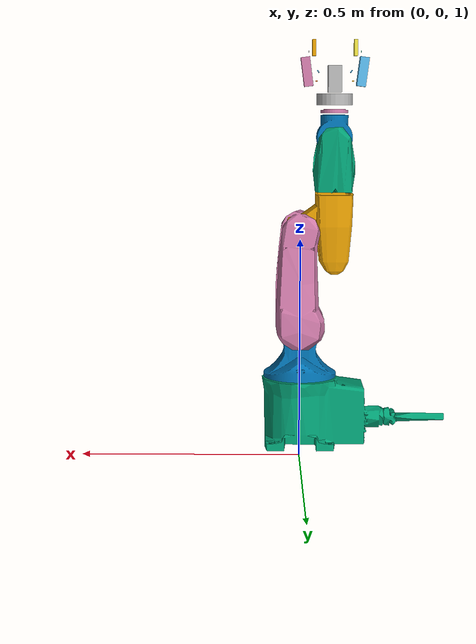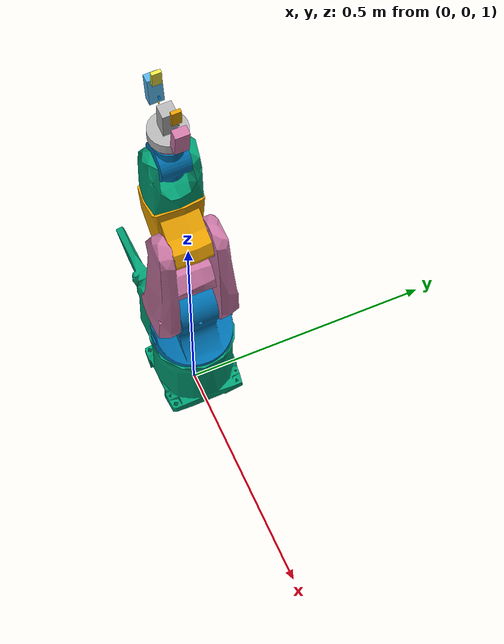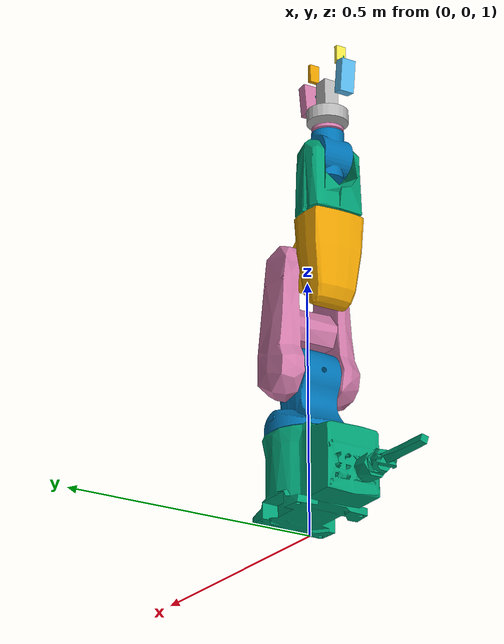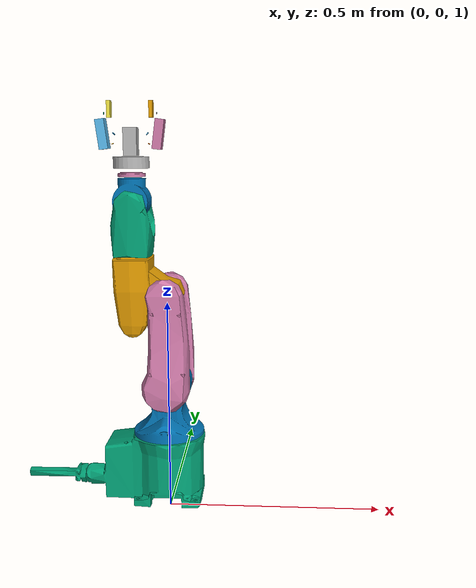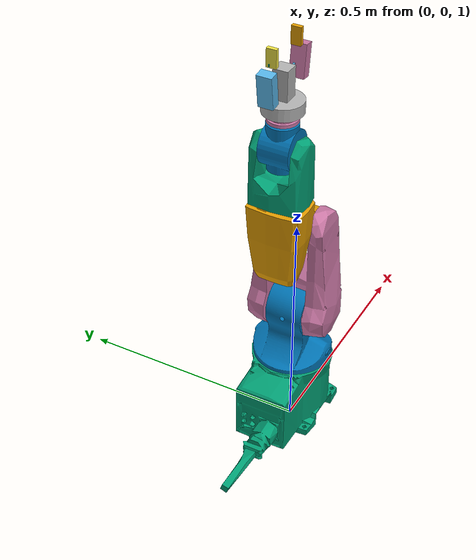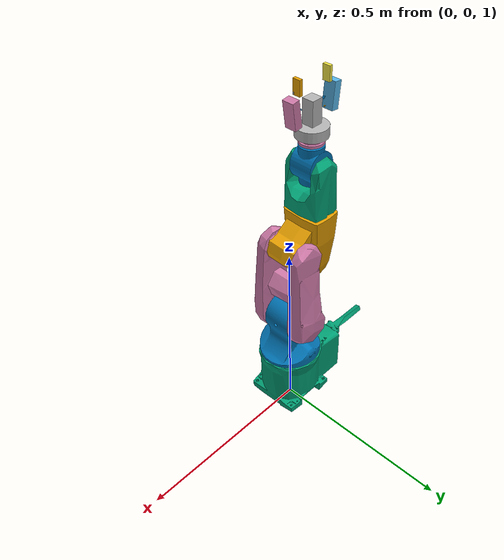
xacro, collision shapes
<?xml version="1.0"?>
<robot xmlns:xacro="http://ros.org/wiki/xacro" name="vp6242_robotiq85">

	<!-- THE ROBOT -->
	<link name="world" />

	<!-- Arm file -->
	<xacro:include filename="$(find vp6242b_description)/urdf/vp6242.urdf.xacro" />
	<joint name="world_joint" type="fixed">
		<parent link="world" />
		<child link = "base_org" />
		<origin xyz="0.0 0.0 1.03" rpy="0.0 0.0 0.0" />
	</joint>

	<!-- Robotiq from Beta Robots fork-->
	<xacro:include filename="$(find robotiq_2f_model)/model/robotiq_2f_85.urdf.xacro" />
	<xacro:robotiq_2f_85 name="simple_gripper" parent="link_6" precise_collision="false" adaptive_transmission="false">
		<origin xyz="0 0 0" rpy="0 0 1.5708" />
	</xacro:robotiq_2f_85>

	<!-- ====== Gazebo Plugins ======= -->
	<gazebo>
		<plugin name="control" filename="libgazebo_ros_control.so" />
	</gazebo>
</robot>

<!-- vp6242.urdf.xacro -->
<robot xmlns:xacro="http://ros.org/wiki/xacro" name="vp6242b">
  <!-- General properties -->
  <xacro:property name="deg2rad" value="${pi/180}"/>
  <xacro:property name="rad2deg" value="${180/pi}"/>
  <xacro:property name="mesh_path" value="package://vp6242b_description/meshes" />

  <!-- Joint properties -->
  <xacro:property name="default_joint_velocity" value="0.8" />
  <xacro:property name="default_joint_effort" value="10e3" />
  <xacro:property name="default_joint_damping" value="0.5" />
  <xacro:property name="default_joint_friction" value="0.06" />

  <xacro:property name="joint_1_min" value="${-90.0*deg2rad}" />
  <xacro:property name="joint_1_max" value="${90.0*deg2rad}" />
  <xacro:property name="joint_2_min" value="${-120.0*deg2rad}" />
  <xacro:property name="joint_2_max" value="${120.0*deg2rad}" />
  <xacro:property name="joint_3_min" value="${-160.0*deg2rad}" />
  <xacro:property name="joint_3_max" value="${1*deg2rad}" />
  <xacro:property name="joint_4_min" value="${-89.0*deg2rad}" />
  <xacro:property name="joint_4_max" value="${89.0*deg2rad}" />
  <xacro:property name="joint_5_min" value="${-120.0*deg2rad}" />
  <xacro:property name="joint_5_max" value="${120.0*deg2rad}" />
  <xacro:property name="joint_6_min" value="${-160.0*deg2rad}" />
  <xacro:property name="joint_6_max" value="${160.0*deg2rad}" />

  <!-- Some Userful Interial Macros -->
  <!-- Ref: https://github.com/uos/uos_tools/blob/fuerte/uos_common_urdf/common.xacro -->
  <xacro:macro name="box_inertial_with_origin" params="x y z mass *origin">
    <inertial>
      <mass value="${mass}" />
      <insert_block name="origin"/>
      <inertia ixx="${0.0833333 * mass * (y*y + z*z)}" ixy="0.0" ixz="0.0"
        iyy="${0.0833333 * mass * (x*x + z*z)}" iyz="0.0"
        izz="${0.0833333 * mass * (x*x + y*y)}" />
    </inertial>
  </xacro:macro>
  <xacro:macro name="sphere_inertial_with_origin" params="radius mass *origin">
    <inertial>
      <mass value="${mass}" />
      <insert_block name="origin" />
      <inertia ixx="${0.4 * mass * radius * radius}" ixy="0.0" ixz="0.0"
        iyy="${0.4 * mass * radius * radius}" iyz="0.0"
        izz="${0.4 * mass * radius * radius}" />
    </inertial>
  </xacro:macro>
  <xacro:macro name="cylinder_inertial_with_origin" params="radius length mass *origin">
    <inertial>
      <mass value="${mass}" />
      <insert_block name="origin" />
      <inertia ixx="${0.0833333 * mass * (3 * radius * radius + length * length)}" ixy="0.0" ixz="0.0"
        iyy="${0.0833333 * mass * (3 * radius * radius + length * length)}" iyz="0.0"
        izz="${0.5 * mass * radius * radius}" />
    </inertial>
  </xacro:macro>

  <!-- ========== Links =========== -->
  <link name="base_org"/>
  <link name="base_link">
    <visual>
       <geometry>
          <mesh filename="${mesh_path}/visual/base.dae"/>
       </geometry>
    </visual>
    <collision>
       <geometry>
          <mesh filename="${mesh_path}/collision/base.dae"/>
       </geometry>
    </collision>
    <xacro:box_inertial_with_origin x="0.2" y="0.155" z="0.155" mass="5">
      <origin xyz="-0.034692 -0.000668 -0.075958"/>
    </xacro:box_inertial_with_origin>
  </link>
  <link name="base_link_aux"/>
  <link name="link_1">
    <visual>
      <geometry>
         <mesh filename="${mesh_path}/visual/link1.dae"/>
      </geometry>
    </visual>
    <collision>
      <geometry>
        <mesh filename="${mesh_path}/collision/link1.dae"/>
      </geometry>
    </collision>
    <xacro:cylinder_inertial_with_origin radius="0.08" length="0.1" mass="4">
      <origin xyz="-0.000004 -0.059714 -0.000001"/>
    </xacro:cylinder_inertial_with_origin>
  </link>
  <link name="link_1_aux"/>
  <link name="link_2">
    <visual>
      <geometry>
         <mesh filename="${mesh_path}/visual/link2.dae"/>
      </geometry>
    </visual>
    <collision>
       <geometry>
          <mesh filename="${mesh_path}/collision/link2.dae"/>
       </geometry>
    </collision>
    <xacro:box_inertial_with_origin x="0.180" y="0.08" z="0.08" mass="2">
      <origin xyz="-0.133202 -0.003108 -0.000139"/>
    </xacro:box_inertial_with_origin>
  </link>
  <link name="link_2_aux"/>
  <link name="link_3">
    <visual>
      <geometry>
          <mesh filename="${mesh_path}/visual/link3.dae"/>
      </geometry>
    </visual>
    <collision>
        <geometry>
          <mesh filename="${mesh_path}/collision/link3.dae"/>
        </geometry>
    </collision>
    <xacro:box_inertial_with_origin x="0.06" y="0.06" z="0.180" mass="2">
      <origin xyz="0 0 0"/>
    </xacro:box_inertial_with_origin>
  </link>
  <link name="link_3_aux"/>
  <link name="link_4">
    <visual>
      <geometry>
          <mesh filename="${mesh_path}/visual/link4.dae"/>
      </geometry>
    </visual>
    <collision>
        <geometry>
          <mesh filename="${mesh_path}/collision/link4.dae"/>
        </geometry>
    </collision>
    <xacro:box_inertial_with_origin x="0.06" y="0.210" z="0.06" mass="2">
      <origin xyz="0 0 0"/>
    </xacro:box_inertial_with_origin>
  </link>
  <link name="link_4_aux"/>
  <link name="link_5">
    <visual>
      <geometry>
         <mesh filename="${mesh_path}/visual/link5.dae"/>
      </geometry>
    </visual>
    <collision>
       <geometry>
          <mesh filename="${mesh_path}/collision/link5.dae"/>
       </geometry>
    </collision>
    <xacro:sphere_inertial_with_origin radius="0.03" mass="0.5">
      <origin xyz="0 0 0"/>
    </xacro:sphere_inertial_with_origin>
  </link>
  <link name="link_5_aux"/>
  <link name="link_6">
    <visual>
      <geometry>
         <mesh filename="${mesh_path}/visual/wrist.dae"/>
      </geometry>
    </visual>
    <collision>
       <geometry>
          <mesh filename="${mesh_path}/collision/wrist.dae"/>
       </geometry>
    </collision>
    <xacro:cylinder_inertial_with_origin radius="0.04" length="0.08" mass="1.0">
      <origin xyz="0 0 0"/>
    </xacro:cylinder_inertial_with_origin>
  </link>

  <!-- ========== Joints =========== -->
  <joint name="base_org_to_base" type="fixed">
    <parent link="base_org"/>
    <child link="base_link"/>
    <origin xyz="0 0 0.155" rpy="0 0 0"/>
  </joint>
  <joint name="joint_1" type="revolute">
    <parent link="base_link"/>
    <child link="base_link_aux"/>
    <axis xyz="0 0 1"/>
    <origin xyz="0 0 0" rpy="0 0 0"/>
    <dynamics damping="${default_joint_damping}" friction="${default_joint_friction}"/>
    <limit effort="${default_joint_effort}" lower="${joint_1_min}" upper="${joint_1_max}" velocity="${default_joint_velocity}"/>
  </joint>
  <joint name="joint_1_aux" type="fixed">
    <parent link="base_link_aux"/>
    <child link="link_1"/>
    <origin xyz="0 0 0.125" rpy="${pi/2} 0 0"/>
  </joint>
  <joint name="joint_2" type="revolute">
    <parent link="link_1"/>
    <child link="link_1_aux"/>
    <axis xyz="0 0 1"/>
    <origin xyz="0 0 0" rpy="0 0 ${pi/2}"/>
    <dynamics damping="${default_joint_damping}" friction="${default_joint_friction}"/>
    <limit effort="${default_joint_effort}" lower="${joint_2_min}" upper="${joint_2_max}" velocity="${default_joint_velocity}"/>
  </joint>
  <joint name="joint_2_aux" type="fixed">
    <parent link="link_1_aux"/>
    <child link="link_2"/>
    <origin xyz="0.210 0 0" rpy="0 0 0"/>
  </joint>
  <joint name="joint_3" type="revolute">
    <parent link="link_2"/>
    <child link="link_2_aux"/>
    <axis xyz="0 0 1"/>
    <origin xyz="0 0 0" rpy="0 0 ${-pi/2}"/>
    <dynamics damping="${default_joint_damping}" friction="${default_joint_friction}"/>
    <limit effort="${default_joint_effort}" lower="${joint_3_min}" upper="${joint_3_max}" velocity="${default_joint_velocity}"/>
  </joint>
  <joint name="joint_3_aux" type="fixed">
    <parent link="link_2_aux"/>
    <child link="link_3"/>
    <origin xyz="-0.075 0 0" rpy="${-pi/2} 0 0"/>
  </joint>
  <joint name="joint_4" type="revolute">
    <parent link="link_3"/>
    <child link="link_3_aux"/>
    <axis xyz="0 0 1"/>
    <origin xyz="0 0 0.210" rpy="0 0 0"/>
    <dynamics damping="${default_joint_damping}" friction="${default_joint_friction}"/>
    <limit effort="${default_joint_effort}" lower="${joint_4_min}" upper="${joint_4_max}" velocity="${default_joint_velocity}"/>
  </joint>
  <joint name="joint_4_aux" type="fixed">
    <parent link="link_3_aux"/>
    <child link="link_4"/>
    <origin xyz="0 0 0" rpy="${pi/2} 0 0"/>
  </joint>
  <joint name="joint_5" type="revolute">
    <parent link="link_4"/>
    <child link="link_4_aux"/>
    <axis xyz="0 0 1"/>
    <origin xyz="0 0 0" rpy="0 0 0"/>
    <dynamics damping="${default_joint_damping}" friction="${default_joint_friction}"/>
    <limit effort="${default_joint_effort}" lower="${joint_5_min}" upper="${joint_5_max}" velocity="${default_joint_velocity}"/>
  </joint>
  <joint name="joint_5_aux" type="fixed">
    <parent link="link_4_aux"/>
    <child link="link_5"/>
    <origin xyz="0 0 0" rpy="${-pi/2} 0 0"/>
  </joint> -->
  <joint name="joint_6" type="revolute">
    <parent link="link_5"/>
    <child link="link_5_aux"/>
    <axis xyz="0 0 1"/>
    <origin xyz="0 0 0.07" rpy="0 0 0"/>
    <dynamics damping="${default_joint_damping}" friction="${default_joint_friction}"/>
    <limit effort="${default_joint_effort}" lower="${joint_6_min}" upper="${joint_6_max}" velocity="${default_joint_velocity}"/>
  </joint>
  <joint name="joint_6_aux" type="fixed">
    <parent link="link_5_aux"/>
    <child link="link_6"/>
    <origin xyz="0 0 0" rpy="0 0 0"/>
  </joint>

  <!-- ======= Transmission -======= -->
  <transmission name="tran_1">
    <type>transmission_interface/SimpleTransmission</type>
    <joint name="joint_1">
      <hardwareInterface>hardware_interface/EffortJointInterface</hardwareInterface>
    </joint>
    <actuator name="motor_1">
      <hardwareInterface>hardware_interface/EffortJointInterface</hardwareInterface>
      <mechanicalReduction>1</mechanicalReduction>
    </actuator>
  </transmission>
  <transmission name="tran_2">
    <type>transmission_interface/SimpleTransmission</type>
    <joint name="joint_2">
      <hardwareInterface>hardware_interface/EffortJointInterface</hardwareInterface>
    </joint>
    <actuator name="motor_2">
      <hardwareInterface>hardware_interface/EffortJointInterface</hardwareInterface>
      <mechanicalReduction>1</mechanicalReduction>
    </actuator>
  </transmission>
  <transmission name="tran_3">
    <type>transmission_interface/SimpleTransmission</type>
    <joint name="joint_3">
      <hardwareInterface>hardware_interface/EffortJointInterface</hardwareInterface>
    </joint>
    <actuator name="motor_3">
      <hardwareInterface>hardware_interface/EffortJointInterface</hardwareInterface>
      <mechanicalReduction>1</mechanicalReduction>
    </actuator>
  </transmission>
  <transmission name="tran_4">
    <type>transmission_interface/SimpleTransmission</type>
    <joint name="joint_4">
      <hardwareInterface>hardware_interface/EffortJointInterface</hardwareInterface>
    </joint>
    <actuator name="motor_4">
      <hardwareInterface>hardware_interface/EffortJointInterface</hardwareInterface>
      <mechanicalReduction>1</mechanicalReduction>
    </actuator>
  </transmission>
    <transmission name="tran_5">
    <type>transmission_interface/SimpleTransmission</type>
    <joint name="joint_5">
      <hardwareInterface>hardware_interface/EffortJointInterface</hardwareInterface>
    </joint>
    <actuator name="motor_5">
      <hardwareInterface>hardware_interface/EffortJointInterface</hardwareInterface>
      <mechanicalReduction>1</mechanicalReduction>
    </actuator>
  </transmission>
  <transmission name="tran_6">
    <type>transmission_interface/SimpleTransmission</type>
    <joint name="joint_6">
      <hardwareInterface>hardware_interface/EffortJointInterface</hardwareInterface>
    </joint>
    <actuator name="motor_6">
      <hardwareInterface>hardware_interface/EffortJointInterface</hardwareInterface>
      <mechanicalReduction>1</mechanicalReduction>
    </actuator>
  </transmission>

</robot>

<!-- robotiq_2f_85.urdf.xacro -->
<robot xmlns:xacro="http://ros.org/wiki/xacro">

	<xacro:include filename="$(find robotiq_2f_model)/model/inertias.urdf.xacro" />

	<xacro:macro name="robotiq_2f_85" params="parent name precise_collision:=false adaptive_transmission:=false with_pads:=true *origin">

		<!-- base -->
		<joint name="${parent}_${name}_base_joint" type="fixed">
			<xacro:insert_block name="origin"/>
			<parent link="${parent}"/>
			<child link="${name}_base"/>
		</joint>
		<link name="${name}_base">
			<inertial>
				<mass value="0.5"/>
				<origin xyz="0 0 ${0.015*0.5}"  />
				<cylinder_inertia radius="0.04" length="0.045" mass="0.5"/>
			</inertial>
			<visual>
				<origin xyz="0 0 0" rpy="0 -1.5708 0"/>
				<geometry>
					<mesh filename="package://robotiq_2f_model/model/meshes/2f85/visual/base.dae"/>
				</geometry>
			</visual>
			<xacro:unless value="${precise_collision}">
			<collision>
				<origin xyz="0 0 0.015" rpy="0 0 0"/>
				<geometry>
					<cylinder radius="0.04" length="0.025"/>
				</geometry>
			</collision>
			<collision>
				<origin xyz="0 0 0.06" rpy="0 0 0"/>
				<geometry>
					<box size="0.03 0.03 0.06"/>
				</geometry>
			</collision>
			</xacro:unless>
			<xacro:if value="${precise_collision}">
			<collision>
				<geometry>
					<mesh filename="package://robotiq_2f_model/model/meshes/2f85/collision/base.stl" scale="0.001 0.001 0.001"/>
				</geometry>
			</collision>
			</xacro:if>
		</link>

		<!-- right finger -->

		<joint name="${name}_right_driver_joint" type="revolute">
			<origin xyz="0 0.0306011 0.054904" rpy="0 0 0"/>
			<parent link="${name}_base"/>
			<child link="${name}_right_driver"/>
			<axis xyz="1 0 0"/>
			<limit lower="${0 * 3.141592 / 180}" upper="${50 * 3.141592 / 180}" effort="60" velocity="${110 * 3.141592 / 180}" />
		</joint>
		<link name="${name}_right_driver">
			<inertial>
				<mass value="0.1"/>
				<origin xyz="0 0.02 0" rpy="0 0 0" />
				<box_inertia x_dim="0.02" y_dim="0.04" z_dim="0.02" mass="0.1"/>
			</inertial>
			<visual>
				<geometry>
					<mesh filename="package://robotiq_2f_model/model/meshes/2f85/visual/driver.dae" scale="0.001 0.001 0.001"/>
				</geometry>
			</visual>
			<xacro:unless value="${precise_collision}">
			<collision>
				<origin xyz="0 0.01 0" rpy="-0.1 0 0"/>
				<geometry>
					<box size="0.002 0.004 0.002"/>
				</geometry>
			</collision>
			</xacro:unless>
			<xacro:if value="${precise_collision}">
			<collision>
				<geometry>
					<mesh filename="package://robotiq_2f_model/model/meshes/2f85/collision/driver.stl" scale="0.001 0.001 0.001"/>
				</geometry>
			</collision>
			</xacro:if>
		</link>

		<xacro:unless value="${adaptive_transmission}">
		<joint name="${name}_right_coupler_joint" type="fixed">
			<origin xyz="0 0.0315 -0.0041" rpy="0 0 0"/>
			<parent link="${name}_right_driver"/>
			<child link="${name}_right_coupler"/>
		</joint>
		</xacro:unless>
		<xacro:if value="${adaptive_transmission}">
			<joint name="${name}_right_coupler_joint" type="revolute">
			<origin xyz="0 0.0315 -0.0041" rpy="0 0 0"/>
			<parent link="${name}_right_driver"/>
			<child link="${name}_right_coupler"/>
			<axis xyz="1 0 0"/>
			<limit lower="${-170 * 3.141592 / 180}" upper="${170 * 3.141592 / 180}" effort="176" velocity="${110 * 3.141592 / 180}" />
		</joint>
		</xacro:if>
		<link name="${name}_right_coupler">
			<inertial>
				<mass value="0.1"/>
				<origin xyz="0 0.0 0.025" rpy="-1.7 0 0"/>
				<box_inertia x_dim="0.03" y_dim="0.065" z_dim="0.02" mass="0.1"/>
			</inertial>
			<visual>
				<geometry>
					<mesh filename="package://robotiq_2f_model/model/meshes/2f85/visual/coupler.dae" scale="0.001 0.001 0.001"/>
				</geometry>
			</visual>
			<xacro:unless value="${precise_collision}">
			<collision>
				<origin xyz="0 0.0 0.025" rpy="-1.7 0 0"/>
				<geometry>
					<box size="0.03 0.065 0.02"/>
				</geometry>
			</collision>
			</xacro:unless>
			<xacro:if value="${precise_collision}">
				<collision>
					<geometry>
						<mesh filename="package://robotiq_2f_model/model/meshes/2f85/collision/coupler.stl" scale="0.001 0.001 0.001"/>
					</geometry>
				</collision>
			</xacro:if>
		</link>

		<joint name="${name}_right_follower_joint" type="revolute">
			<origin xyz="0 0.0061 0.0471" rpy="0 0 0"/>
			<parent link="${name}_right_coupler"/>
			<child link="${name}_right_follower"/>
			<axis xyz="1 0 0"/>
			<limit lower="${-170 * 3.141592 / 180}" upper="${170 * 3.141592 / 180}" effort="176" velocity="${110 * 3.141592 / 180}" />

			<xacro:unless value="${adaptive_transmission}">
			<mimic joint="${name}_right_driver_joint" multiplier="-1"/>
			</xacro:unless>
		</joint>
		<link name="${name}_right_follower">
			<inertial>
				<mass value="0.1"/>
				<origin xyz="0 -0.018 0.022" />
				<box_inertia x_dim="0.02" y_dim="0.015" z_dim="0.048" mass="0.1"/>
			</inertial>
			<visual>
				<geometry>
					<mesh filename="package://robotiq_2f_model/model/meshes/2f85/visual/follower.dae" scale="0.001 0.001 0.001"/>
				</geometry>
			</visual>
			<xacro:unless value="${precise_collision}">
			<collision>
				<origin xyz="0 -0.01 0.022" rpy="0 0 0"/>
				<geometry>
					<box size="0.002 0.0015 0.0048"/>
				</geometry>
			</collision>
			</xacro:unless>
			<xacro:if value="${precise_collision}">
			<collision>
				<geometry>
					<mesh filename="package://robotiq_2f_model/model/meshes/2f85/collision/follower.stl" scale="0.001 0.001 0.001"/>
				</geometry>
			</collision>
			</xacro:if>
		</link>

		<xacro:if value="${with_pads}">
			<joint name="${name}_right_pad_joint" type="fixed">
				<parent link="${name}_right_follower"/>
				<child link="${name}_right_pad"/>
			</joint>
			<link name="${name}_right_pad">
				<inertial>
					<mass value="0.1"/>
					<origin xyz="0 -0.022 0.031" />
					<box_inertia x_dim="0.02" y_dim="0.008" z_dim="0.036" mass="0.1"/>
				</inertial>
				<visual>
					<geometry>
						<mesh filename="package://robotiq_2f_model/model/meshes/2f85/visual/pad.dae" scale="0.001 0.001 0.001"/>
					</geometry>
				</visual>
				<xacro:unless value="${precise_collision}">
				<collision>
					<origin xyz="0 -0.022 0.031" rpy="0 0 0"/>
					<geometry>
						<box size="0.02 0.008 0.036"/>
					</geometry>
				</collision>
				</xacro:unless>
				<xacro:if value="${precise_collision}">
				<collision>
					<geometry>
						<mesh filename="package://robotiq_2f_model/model/meshes/2f85/collision/pad.stl" scale="0.001 0.001 0.001"/>
					</geometry>
				</collision>
				</xacro:if>
			</link>
		</xacro:if>

		<joint name="${name}_right_spring_link_joint" type="revolute">
			<origin xyz="0 0.012 0.0614" rpy="0 0 0"/>
			<parent link="${name}_base"/>
			<child link="${name}_right_spring_link"/>
			<axis xyz="1 0 0"/>
			<limit lower="${-170 * 3.141592 / 180}" upper="${170 * 3.141592 / 180}" effort="176" velocity="${110 * 3.141592 / 180}" />

			<xacro:unless value="${adaptive_transmission}">
			<mimic joint="${name}_right_driver_joint" multiplier="1"/>
			</xacro:unless>
		</joint>
		<link name="${name}_right_spring_link">
			<inertial>
				<mass value="0.1"/>
				<origin xyz="0 0.018 0.018" rpy="-0.7068 0 0"/>
				<box_inertia x_dim="0.04" y_dim="0.02" z_dim="0.065" mass="0.1"/>
			</inertial>
			<visual>
				<geometry>
					<mesh filename="package://robotiq_2f_model/model/meshes/2f85/visual/spring_link.dae" scale="0.001 0.001 0.001"/>
				</geometry>
			</visual>
			<xacro:unless value="${precise_collision}">
			<collision>
				<origin xyz="0 0.025 0.015" rpy="-0.7068 0 0"/>
				<geometry>
					<box size="0.004 0.002 0.0065"/>
				</geometry>
			</collision>
			</xacro:unless>
			<xacro:if value="${precise_collision}">
			<collision>
				<geometry>
					<mesh filename="package://robotiq_2f_model/model/meshes/2f85/collision/spring_link.stl" scale="0.001 0.001 0.001"/>
				</geometry>
			</collision>
			</xacro:if>
		</link>

		<!-- left finger -->

		<joint name="${name}_left_driver_joint" type="revolute">
			<origin xyz="0 -0.0306011 0.054904" rpy="0 0 3.141592653589793"/>
			<parent link="${name}_base"/>
			<child link="${name}_left_driver"/>
			<axis xyz="1 0 0"/>
			<limit lower="${0 * 3.141592 / 180}" upper="${50 * 3.141592 / 180}" effort="176" velocity="${110 * 3.141592 / 180}" />

			<xacro:unless value="${adaptive_transmission}">
			<mimic joint="${name}_right_driver_joint" multiplier="1"/>
			</xacro:unless>
		</joint>
		<link name="${name}_left_driver">
			<inertial>
				<mass value="0.1"/>
				<origin xyz="0 0.02 0" rpy="0 0 0" />
				<box_inertia x_dim="0.02" y_dim="0.04" z_dim="0.02" mass="0.1"/>
			</inertial>
			<visual>
				<geometry>
					<mesh filename="package://robotiq_2f_model/model/meshes/2f85/visual/driver.dae" scale="0.001 0.001 0.001"/>
				</geometry>
			</visual>
			<xacro:unless value="${precise_collision}">
			<collision>
				<origin xyz="0 0.01 0" rpy="-0.1 0 0"/>
				<geometry>
					<box size="0.002 0.004 0.002"/>
				</geometry>
			</collision>
			</xacro:unless>
			<xacro:if value="${precise_collision}">
			<collision>
				<geometry>
					<mesh filename="package://robotiq_2f_model/model/meshes/2f85/collision/driver.stl" scale="0.001 0.001 0.001"/>
				</geometry>
			</collision>
			</xacro:if>
		</link>

		<xacro:unless value="${adaptive_transmission}">
		<joint name="${name}_left_coupler_joint" type="fixed">
			<origin xyz="0 0.0315 -0.0041" rpy="0 0 0"/>
			<parent link="${name}_left_driver"/>
			<child link="${name}_left_coupler"/>
		</joint>
		</xacro:unless>
		<xacro:if value="${adaptive_transmission}">
			<joint name="${name}_left_coupler_joint" type="revolute">
			<origin xyz="0 0.0315 -0.0041" rpy="0 0 0"/>
			<parent link="${name}_left_driver"/>
			<child link="${name}_left_coupler"/>
			<axis xyz="1 0 0"/>
			<limit lower="${-170 * 3.141592 / 180}" upper="${170 * 3.141592 / 180}" effort="176" velocity="${110 * 3.141592 / 180}" />
		</joint>
		</xacro:if>
		<link name="${name}_left_coupler">
			<inertial>
				<mass value="0.1"/>
				<origin xyz="0 0.0 0.025" rpy="-1.7 0 0"/>
				<box_inertia x_dim="0.03" y_dim="0.065" z_dim="0.02" mass="0.1"/>
			</inertial>
			<visual>
				<geometry>
					<mesh filename="package://robotiq_2f_model/model/meshes/2f85/visual/coupler.dae" scale="0.001 0.001 0.001"/>
				</geometry>
			</visual>
			<xacro:unless value="${precise_collision}">
			<collision>
				<origin xyz="0 0.0 0.025" rpy="-1.7 0 0"/>
				<geometry>
					<box size="0.03 0.065 0.02"/>
				</geometry>
			</collision>
			</xacro:unless>
			<xacro:if value="${precise_collision}">
				<collision>
					<geometry>
						<mesh filename="package://robotiq_2f_model/model/meshes/2f85/collision/coupler.stl" scale="0.001 0.001 0.001"/>
					</geometry>
				</collision>
			</xacro:if>
		</link>

		<joint name="${name}_left_follower_joint" type="revolute">
			<origin xyz="0 0.0061 0.0471" rpy="0 0 0"/>
			<parent link="${name}_left_coupler"/>
			<child link="${name}_left_follower"/>
			<axis xyz="1 0 0"/>
			<limit lower="${-170 * 3.141592 / 180}" upper="${170 * 3.141592 / 180}" effort="176" velocity="${110 * 3.141592 / 180}" />

			<xacro:unless value="${adaptive_transmission}">
			<mimic joint="${name}_right_driver_joint" multiplier="-1"/>
			</xacro:unless>
		</joint>
		<link name="${name}_left_follower">
			<inertial>
				<mass value="0.1"/>
				<origin xyz="0 -0.018 0.022" />
				<box_inertia x_dim="0.02" y_dim="0.015" z_dim="0.048" mass="0.1"/>
			</inertial>
			<visual>
				<geometry>
					<mesh filename="package://robotiq_2f_model/model/meshes/2f85/visual/follower.dae" scale="0.001 0.001 0.001"/>
				</geometry>
			</visual>
			<xacro:unless value="${precise_collision}">
			<collision>
				<origin xyz="0 -0.01 0.022" rpy="0 0 0"/>
				<geometry>
					<box size="0.002 0.0015 0.0048"/>
				</geometry>
			</collision>
			</xacro:unless>
			<xacro:if value="${precise_collision}">
			<collision>
				<geometry>
					<mesh filename="package://robotiq_2f_model/model/meshes/2f85/collision/follower.stl" scale="0.001 0.001 0.001"/>
				</geometry>
			</collision>
			</xacro:if>
		</link>

		<xacro:if value="${with_pads}">
			<joint name="${name}_left_pad_joint" type="fixed">
				<parent link="${name}_left_follower"/>
				<child link="${name}_left_pad"/>
			</joint>
			<link name="${name}_left_pad">
				<inertial>
					<mass value="0.1"/>
					<origin xyz="0 -0.022 0.031" />
					<box_inertia x_dim="0.02" y_dim="0.008" z_dim="0.036" mass="0.1"/>
				</inertial>
				<visual>
					<geometry>
						<mesh filename="package://robotiq_2f_model/model/meshes/2f85/visual/pad.dae" scale="0.001 0.001 0.001"/>
					</geometry>
				</visual>
				<xacro:unless value="${precise_collision}">
				<collision>
					<origin xyz="0 -0.022 0.031" rpy="0 0 0"/>
					<geometry>
						<box size="0.02 0.008 0.036"/>
					</geometry>
				</collision>
				</xacro:unless>
				<xacro:if value="${precise_collision}">
				<collision>
					<geometry>
						<mesh filename="package://robotiq_2f_model/model/meshes/2f85/collision/pad.stl" scale="0.001 0.001 0.001"/>
					</geometry>
				</collision>
				</xacro:if>
			</link>
		</xacro:if>

		<joint name="${name}_left_spring_link_joint" type="revolute">
			<origin xyz="0 -0.012 0.0614" rpy="0 0 3.141592653589793"/>
			<parent link="${name}_base"/>
			<child link="${name}_left_spring_link"/>
			<axis xyz="1 0 0"/>
			<limit lower="${-170 * 3.141592 / 180}" upper="${170 * 3.141592 / 180}" effort="176" velocity="${110 * 3.141592 / 180}" />

			<xacro:unless value="${adaptive_transmission}">
			<mimic joint="${name}_right_driver_joint" multiplier="1"/>
			</xacro:unless>
		</joint>
		<link name="${name}_left_spring_link">
			<inertial>
				<mass value="0.1"/>
				<origin xyz="0 0.018 0.018" rpy="-0.7068 0 0"/>
				<box_inertia x_dim="0.04" y_dim="0.02" z_dim="0.065" mass="0.1"/>
			</inertial>
			<visual>
				<geometry>
					<mesh filename="package://robotiq_2f_model/model/meshes/2f85/visual/spring_link.dae" scale="0.001 0.001 0.001"/>
				</geometry>
			</visual>
			<xacro:unless value="${precise_collision}">
			<collision>
				<origin xyz="0 0.025 0.015" rpy="-0.7068 0 0"/>
				<geometry>
					<box size="0.004 0.002 0.0065"/>
				</geometry>
			</collision>
			</xacro:unless>
			<xacro:if value="${precise_collision}">
			<collision>
				<geometry>
					<mesh filename="package://robotiq_2f_model/model/meshes/2f85/collision/spring_link.stl" scale="0.001 0.001 0.001"/>
				</geometry>
			</collision>
			</xacro:if>
		</link>

		<xacro:unless value="${adaptive_transmission}">
			<transmission name="${name}_right_driver_trans">
				<type>transmission_interface/SimpleTransmission</type>
				<joint name="${name}_right_driver_joint">
					<hardwareInterface>hardware_interface/PositionJointInterface</hardwareInterface>
				</joint>
				<actuator name="${name}_right_driver_motor">
					<mechanicalReduction>1</mechanicalReduction>
				</actuator>
			</transmission>

			<gazebo>
				<plugin name="${name}_right_follower_joint_plugin" filename="libroboticsgroup_gazebo_mimic_joint_plugin.so">
					<joint>${name}_right_driver_joint</joint>
					<mimicJoint>${name}_right_follower_joint</mimicJoint>
					<multiplier>-1</multiplier>
				</plugin>
				<plugin name="${name}_right_spring_link_joint_plugin" filename="libroboticsgroup_gazebo_mimic_joint_plugin.so">
					<joint>${name}_right_driver_joint</joint>
					<mimicJoint>${name}_right_spring_link_joint</mimicJoint>
					<multiplier>1</multiplier>
				</plugin>
				<plugin name="${name}_left_follower_joint_plugin" filename="libroboticsgroup_gazebo_mimic_joint_plugin.so">
					<joint>${name}_right_driver_joint</joint>
					<mimicJoint>${name}_left_follower_joint</mimicJoint>
					<multiplier>-1</multiplier>
				</plugin>
				<plugin name="${name}_left_spring_link_joint_plugin" filename="libroboticsgroup_gazebo_mimic_joint_plugin.so">
					<joint>${name}_right_driver_joint</joint>
					<mimicJoint>${name}_left_spring_link_joint</mimicJoint>
					<multiplier>1</multiplier>
				</plugin>
				<plugin name="${name}_left_driver_joint_plugin" filename="libroboticsgroup_gazebo_mimic_joint_plugin.so">
					<joint>${name}_right_driver_joint</joint>
					<mimicJoint>${name}_left_driver_joint</mimicJoint>
					<multiplier>1</multiplier>
				</plugin>
			</gazebo>
		</xacro:unless>
	</xacro:macro>
</robot>
